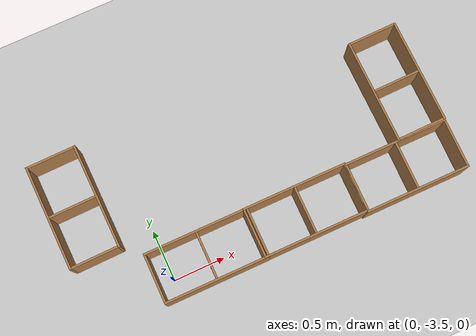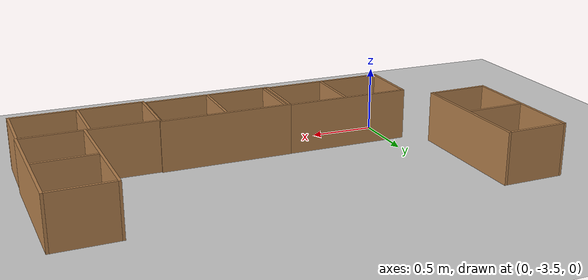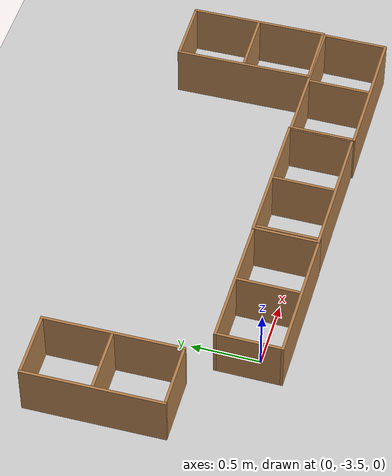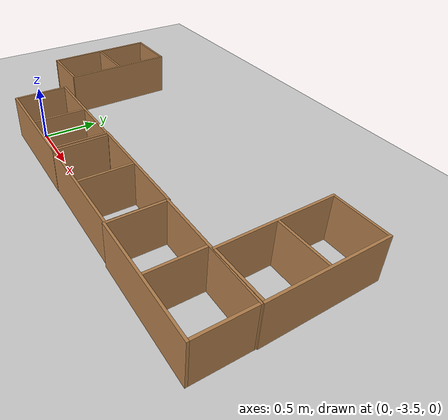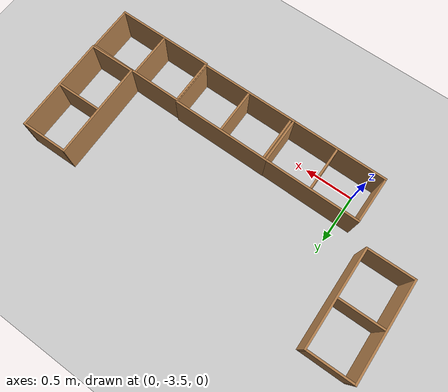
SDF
<sdf version="1.7">
 <world name="default">
  <model name="ground_plane">
   <static>1</static>
   <link name="link">
    <collision name="collision">
     <geometry><plane><normal>0 0 1</normal><size>100 100</size></plane></geometry>
     <surface>
      <contact><collide_bitmask>65535</collide_bitmask></contact>
      <friction><ode><mu>100</mu><mu2>50</mu2></ode></friction>
     </surface>
    </collision>
    <visual name="visual">
     <cast_shadows>0</cast_shadows>
     <geometry><plane><normal>0 0 1</normal><size>100 100</size></plane></geometry>
     <material>
      <script><uri>file://media/materials/scripts/gazebo.material</uri><name>Gazebo/Grey</name></script>
     </material>
    </visual>
   </link>
  </model>
  <model name="cabinet">
   <static>1</static>
   <link name="cabinet_bottom_plate">
    <inertial>
     <pose>0 0 -1 0 -0 0</pose>
     <inertia><ixx>2.05</ixx><ixy>0</ixy><ixz>0</ixz><iyy>2.05</iyy><iyz>0</iyz><izz>2.05</izz></inertia>
     <mass>25</mass>
    </inertial>
    <collision name="cabinet_bottom_plate_geom">
     <pose>0 0 0.01 0 -0 0</pose>
     <geometry><box><size>0.45 0.45 0.02</size></box></geometry>
    </collision>
    <visual name="cabinet_bottom_plate_geom_visual">
     <pose>0 0 0.01 0 -0 0</pose>
     <geometry><box><size>0.45 0.45 0.02</size></box></geometry>
     <material>
      <script><uri>file://media/materials/scripts/gazebo.material</uri><name>Gazebo/Wood</name></script>
     </material>
    </visual>
    <collision name="cabinet_bottom_plate_geom_cabinet_back_plate">
     <pose>0.235 0 0.51 0 -0 0</pose>
     <geometry><box><size>0.02 0.45 1.02</size></box></geometry>
    </collision>
    <visual name="cabinet_bottom_plate_geom_cabinet_back_plate_visual">
     <pose>0.235 0 0.51 0 -0 0</pose>
     <geometry><box><size>0.02 0.45 1.02</size></box></geometry>
     <material>
      <script><uri>file://media/materials/scripts/gazebo.material</uri><name>Gazebo/Wood</name></script>
     </material>
    </visual>
    <collision name="cabinet_bottom_plate_geom_cabinet_left_plate">
     <pose>0 0.235 0.51 0 -0 0</pose>
     <geometry><box><size>0.45 0.02 1.02</size></box></geometry>
    </collision>
    <visual name="cabinet_bottom_plate_geom_cabinet_left_plate_visual">
     <pose>0 0.235 0.51 0 -0 0</pose>
     <geometry><box><size>0.45 0.02 1.02</size></box></geometry>
     <material>
      <script><uri>file://media/materials/scripts/gazebo.material</uri><name>Gazebo/Wood</name></script>
     </material>
    </visual>
    <collision name="cabinet_bottom_plate_geom_cabinet_middle_plate">
     <pose>0 0 0.51 0 -0 0</pose>
     <geometry><box><size>0.45 0.45 0.02</size></box></geometry>
    </collision>
    <visual name="cabinet_bottom_plate_geom_cabinet_middle_plate_visual">
     <pose>0 0 0.51 0 -0 0</pose>
     <geometry><box><size>0.45 0.45 0.02</size></box></geometry>
     <material>
      <script><uri>file://media/materials/scripts/gazebo.material</uri><name>Gazebo/Wood</name></script>
     </material>
    </visual>
    <collision name="cabinet_bottom_plate_geom_cabinet_right_plate">
     <pose>0 -0.235 0.51 0 -0 0</pose>
     <geometry><box><size>0.45 0.02 1.02</size></box></geometry>
    </collision>
    <visual name="cabinet_bottom_plate_geom_cabinet_right_plate_visual">
     <pose>0 -0.235 0.51 0 -0 0</pose>
     <geometry><box><size>0.45 0.02 1.02</size></box></geometry>
     <material>
      <script><uri>file://media/materials/scripts/gazebo.material</uri><name>Gazebo/Wood</name></script>
     </material>
    </visual>
    <collision name="cabinet_bottom_plate_geom_cabinet_top_plate">
     <pose>0 0 1.01 0 -0 0</pose>
     <geometry><box><size>0.45 0.45 0.02</size></box></geometry>
    </collision>
    <visual name="cabinet_bottom_plate_geom_cabinet_top_plate_visual">
     <pose>0 0 1.01 0 -0 0</pose>
     <geometry><box><size>0.45 0.45 0.02</size></box></geometry>
     <material>
      <script><uri>file://media/materials/scripts/gazebo.material</uri><name>Gazebo/Wood</name></script>
     </material>
    </visual>
   </link>
   <pose>-0.147311 -3.44738 0.169718 3.14159 1.5658 3.14159</pose>
  </model>
  <model name="cabinet_clone_3">
   <static>1</static>
   <link name="cabinet_bottom_plate">
    <inertial>
     <pose>0 0 -1 0 -0 0</pose>
     <inertia><ixx>2.05</ixx><ixy>0</ixy><ixz>0</ixz><iyy>2.05</iyy><iyz>0</iyz><izz>2.05</izz></inertia>
     <mass>25</mass>
    </inertial>
    <collision name="cabinet_bottom_plate_geom">
     <pose>0 0 0.01 0 -0 0</pose>
     <geometry><box><size>0.45 0.45 0.02</size></box></geometry>
    </collision>
    <visual name="cabinet_bottom_plate_geom_visual">
     <pose>0 0 0.01 0 -0 0</pose>
     <geometry><box><size>0.45 0.45 0.02</size></box></geometry>
     <material>
      <script><uri>file://media/materials/scripts/gazebo.material</uri><name>Gazebo/Wood</name></script>
     </material>
    </visual>
    <collision name="cabinet_bottom_plate_geom_cabinet_back_plate">
     <pose>0.235 0 0.51 0 -0 0</pose>
     <geometry><box><size>0.02 0.45 1.02</size></box></geometry>
    </collision>
    <visual name="cabinet_bottom_plate_geom_cabinet_back_plate_visual">
     <pose>0.235 0 0.51 0 -0 0</pose>
     <geometry><box><size>0.02 0.45 1.02</size></box></geometry>
     <material>
      <script><uri>file://media/materials/scripts/gazebo.material</uri><name>Gazebo/Wood</name></script>
     </material>
    </visual>
    <collision name="cabinet_bottom_plate_geom_cabinet_left_plate">
     <pose>0 0.235 0.51 0 -0 0</pose>
     <geometry><box><size>0.45 0.02 1.02</size></box></geometry>
    </collision>
    <visual name="cabinet_bottom_plate_geom_cabinet_left_plate_visual">
     <pose>0 0.235 0.51 0 -0 0</pose>
     <geometry><box><size>0.45 0.02 1.02</size></box></geometry>
     <material>
      <script><uri>file://media/materials/scripts/gazebo.material</uri><name>Gazebo/Wood</name></script>
     </material>
    </visual>
    <collision name="cabinet_bottom_plate_geom_cabinet_middle_plate">
     <pose>0 0 0.51 0 -0 0</pose>
     <geometry><box><size>0.45 0.45 0.02</size></box></geometry>
    </collision>
    <visual name="cabinet_bottom_plate_geom_cabinet_middle_plate_visual">
     <pose>0 0 0.51 0 -0 0</pose>
     <geometry><box><size>0.45 0.45 0.02</size></box></geometry>
     <material>
      <script><uri>file://media/materials/scripts/gazebo.material</uri><name>Gazebo/Wood</name></script>
     </material>
    </visual>
    <collision name="cabinet_bottom_plate_geom_cabinet_right_plate">
     <pose>0 -0.235 0.51 0 -0 0</pose>
     <geometry><box><size>0.45 0.02 1.02</size></box></geometry>
    </collision>
    <visual name="cabinet_bottom_plate_geom_cabinet_right_plate_visual">
     <pose>0 -0.235 0.51 0 -0 0</pose>
     <geometry><box><size>0.45 0.02 1.02</size></box></geometry>
     <material>
      <script><uri>file://media/materials/scripts/gazebo.material</uri><name>Gazebo/Wood</name></script>
     </material>
    </visual>
    <collision name="cabinet_bottom_plate_geom_cabinet_top_plate">
     <pose>0 0 1.01 0 -0 0</pose>
     <geometry><box><size>0.45 0.45 0.02</size></box></geometry>
    </collision>
    <visual name="cabinet_bottom_plate_geom_cabinet_top_plate_visual">
     <pose>0 0 1.01 0 -0 0</pose>
     <geometry><box><size>0.45 0.45 0.02</size></box></geometry>
     <material>
      <script><uri>file://media/materials/scripts/gazebo.material</uri><name>Gazebo/Wood</name></script>
     </material>
    </visual>
   </link>
   <pose>0.824331 -3.4453 0.169718 3.14159 1.5658 3.14159</pose>
  </model>
  <model name="cabinet_clone_4">
   <static>1</static>
   <link name="cabinet_bottom_plate">
    <inertial>
     <pose>0 0 -1 0 -0 0</pose>
     <inertia><ixx>2.05</ixx><ixy>0</ixy><ixz>0</ixz><iyy>2.05</iyy><iyz>0</iyz><izz>2.05</izz></inertia>
     <mass>25</mass>
    </inertial>
    <collision name="cabinet_bottom_plate_geom">
     <pose>0 0 0.01 0 -0 0</pose>
     <geometry><box><size>0.45 0.45 0.02</size></box></geometry>
    </collision>
    <visual name="cabinet_bottom_plate_geom_visual">
     <pose>0 0 0.01 0 -0 0</pose>
     <geometry><box><size>0.45 0.45 0.02</size></box></geometry>
     <material>
      <script><uri>file://media/materials/scripts/gazebo.material</uri><name>Gazebo/Wood</name></script>
     </material>
    </visual>
    <collision name="cabinet_bottom_plate_geom_cabinet_back_plate">
     <pose>0.235 0 0.51 0 -0 0</pose>
     <geometry><box><size>0.02 0.45 1.02</size></box></geometry>
    </collision>
    <visual name="cabinet_bottom_plate_geom_cabinet_back_plate_visual">
     <pose>0.235 0 0.51 0 -0 0</pose>
     <geometry><box><size>0.02 0.45 1.02</size></box></geometry>
     <material>
      <script><uri>file://media/materials/scripts/gazebo.material</uri><name>Gazebo/Wood</name></script>
     </material>
    </visual>
    <collision name="cabinet_bottom_plate_geom_cabinet_left_plate">
     <pose>0 0.235 0.51 0 -0 0</pose>
     <geometry><box><size>0.45 0.02 1.02</size></box></geometry>
    </collision>
    <visual name="cabinet_bottom_plate_geom_cabinet_left_plate_visual">
     <pose>0 0.235 0.51 0 -0 0</pose>
     <geometry><box><size>0.45 0.02 1.02</size></box></geometry>
     <material>
      <script><uri>file://media/materials/scripts/gazebo.material</uri><name>Gazebo/Wood</name></script>
     </material>
    </visual>
    <collision name="cabinet_bottom_plate_geom_cabinet_middle_plate">
     <pose>0 0 0.51 0 -0 0</pose>
     <geometry><box><size>0.45 0.45 0.02</size></box></geometry>
    </collision>
    <visual name="cabinet_bottom_plate_geom_cabinet_middle_plate_visual">
     <pose>0 0 0.51 0 -0 0</pose>
     <geometry><box><size>0.45 0.45 0.02</size></box></geometry>
     <material>
      <script><uri>file://media/materials/scripts/gazebo.material</uri><name>Gazebo/Wood</name></script>
     </material>
    </visual>
    <collision name="cabinet_bottom_plate_geom_cabinet_right_plate">
     <pose>0 -0.235 0.51 0 -0 0</pose>
     <geometry><box><size>0.45 0.02 1.02</size></box></geometry>
    </collision>
    <visual name="cabinet_bottom_plate_geom_cabinet_right_plate_visual">
     <pose>0 -0.235 0.51 0 -0 0</pose>
     <geometry><box><size>0.45 0.02 1.02</size></box></geometry>
     <material>
      <script><uri>file://media/materials/scripts/gazebo.material</uri><name>Gazebo/Wood</name></script>
     </material>
    </visual>
    <collision name="cabinet_bottom_plate_geom_cabinet_top_plate">
     <pose>0 0 1.01 0 -0 0</pose>
     <geometry><box><size>0.45 0.45 0.02</size></box></geometry>
    </collision>
    <visual name="cabinet_bottom_plate_geom_cabinet_top_plate_visual">
     <pose>0 0 1.01 0 -0 0</pose>
     <geometry><box><size>0.45 0.45 0.02</size></box></geometry>
     <material>
      <script><uri>file://media/materials/scripts/gazebo.material</uri><name>Gazebo/Wood</name></script>
     </material>
    </visual>
   </link>
   <pose>1.83361 -3.45652 0.169718 3.14159 1.5658 3.14159</pose>
  </model>
  <model name="cabinet_clone_5_clone_5">
   <static>1</static>
   <link name="cabinet_bottom_plate">
    <inertial>
     <pose>0 0 -1 0 -0 0</pose>
     <inertia><ixx>2.05</ixx><ixy>0</ixy><ixz>0</ixz><iyy>2.05</iyy><iyz>0</iyz><izz>2.05</izz></inertia>
     <mass>25</mass>
    </inertial>
    <collision name="cabinet_bottom_plate_geom">
     <pose>0 0 0.01 0 -0 0</pose>
     <geometry><box><size>0.45 0.45 0.02</size></box></geometry>
    </collision>
    <visual name="cabinet_bottom_plate_geom_visual">
     <pose>0 0 0.01 0 -0 0</pose>
     <geometry><box><size>0.45 0.45 0.02</size></box></geometry>
     <material>
      <script><uri>file://media/materials/scripts/gazebo.material</uri><name>Gazebo/Wood</name></script>
     </material>
    </visual>
    <collision name="cabinet_bottom_plate_geom_cabinet_back_plate">
     <pose>0.235 0 0.51 0 -0 0</pose>
     <geometry><box><size>0.02 0.45 1.02</size></box></geometry>
    </collision>
    <visual name="cabinet_bottom_plate_geom_cabinet_back_plate_visual">
     <pose>0.235 0 0.51 0 -0 0</pose>
     <geometry><box><size>0.02 0.45 1.02</size></box></geometry>
     <material>
      <script><uri>file://media/materials/scripts/gazebo.material</uri><name>Gazebo/Wood</name></script>
     </material>
    </visual>
    <collision name="cabinet_bottom_plate_geom_cabinet_left_plate">
     <pose>0 0.235 0.51 0 -0 0</pose>
     <geometry><box><size>0.45 0.02 1.02</size></box></geometry>
    </collision>
    <visual name="cabinet_bottom_plate_geom_cabinet_left_plate_visual">
     <pose>0 0.235 0.51 0 -0 0</pose>
     <geometry><box><size>0.45 0.02 1.02</size></box></geometry>
     <material>
      <script><uri>file://media/materials/scripts/gazebo.material</uri><name>Gazebo/Wood</name></script>
     </material>
    </visual>
    <collision name="cabinet_bottom_plate_geom_cabinet_middle_plate">
     <pose>0 0 0.51 0 -0 0</pose>
     <geometry><box><size>0.45 0.45 0.02</size></box></geometry>
    </collision>
    <visual name="cabinet_bottom_plate_geom_cabinet_middle_plate_visual">
     <pose>0 0 0.51 0 -0 0</pose>
     <geometry><box><size>0.45 0.45 0.02</size></box></geometry>
     <material>
      <script><uri>file://media/materials/scripts/gazebo.material</uri><name>Gazebo/Wood</name></script>
     </material>
    </visual>
    <collision name="cabinet_bottom_plate_geom_cabinet_right_plate">
     <pose>0 -0.235 0.51 0 -0 0</pose>
     <geometry><box><size>0.45 0.02 1.02</size></box></geometry>
    </collision>
    <visual name="cabinet_bottom_plate_geom_cabinet_right_plate_visual">
     <pose>0 -0.235 0.51 0 -0 0</pose>
     <geometry><box><size>0.45 0.02 1.02</size></box></geometry>
     <material>
      <script><uri>file://media/materials/scripts/gazebo.material</uri><name>Gazebo/Wood</name></script>
     </material>
    </visual>
    <collision name="cabinet_bottom_plate_geom_cabinet_top_plate">
     <pose>0 0 1.01 0 -0 0</pose>
     <geometry><box><size>0.45 0.45 0.02</size></box></geometry>
    </collision>
    <visual name="cabinet_bottom_plate_geom_cabinet_top_plate_visual">
     <pose>0 0 1.01 0 -0 0</pose>
     <geometry><box><size>0.45 0.45 0.02</size></box></geometry>
     <material>
      <script><uri>file://media/materials/scripts/gazebo.material</uri><name>Gazebo/Wood</name></script>
     </material>
    </visual>
   </link>
   <pose>2.61559 -3.21985 0.169718 1.55548 1.5658 -3.14159</pose>
  </model>
  <model name="cabinet_clone_5_clone_13_clone">
   <static>1</static>
   <link name="cabinet_bottom_plate">
    <inertial>
     <pose>0 0 -1 0 -0 0</pose>
     <inertia><ixx>2.05</ixx><ixy>0</ixy><ixz>0</ixz><iyy>2.05</iyy><iyz>0</iyz><izz>2.05</izz></inertia>
     <mass>25</mass>
    </inertial>
    <collision name="cabinet_bottom_plate_geom">
     <pose>0 0 0.01 0 -0 0</pose>
     <geometry><box><size>0.45 0.45 0.02</size></box></geometry>
    </collision>
    <visual name="cabinet_bottom_plate_geom_visual">
     <pose>0 0 0.01 0 -0 0</pose>
     <geometry><box><size>0.45 0.45 0.02</size></box></geometry>
     <material>
      <script><uri>file://media/materials/scripts/gazebo.material</uri><name>Gazebo/Wood</name></script>
     </material>
    </visual>
    <collision name="cabinet_bottom_plate_geom_cabinet_back_plate">
     <pose>0.235 0 0.51 0 -0 0</pose>
     <geometry><box><size>0.02 0.45 1.02</size></box></geometry>
    </collision>
    <visual name="cabinet_bottom_plate_geom_cabinet_back_plate_visual">
     <pose>0.235 0 0.51 0 -0 0</pose>
     <geometry><box><size>0.02 0.45 1.02</size></box></geometry>
     <material>
      <script><uri>file://media/materials/scripts/gazebo.material</uri><name>Gazebo/Wood</name></script>
     </material>
    </visual>
    <collision name="cabinet_bottom_plate_geom_cabinet_left_plate">
     <pose>0 0.235 0.51 0 -0 0</pose>
     <geometry><box><size>0.45 0.02 1.02</size></box></geometry>
    </collision>
    <visual name="cabinet_bottom_plate_geom_cabinet_left_plate_visual">
     <pose>0 0.235 0.51 0 -0 0</pose>
     <geometry><box><size>0.45 0.02 1.02</size></box></geometry>
     <material>
      <script><uri>file://media/materials/scripts/gazebo.material</uri><name>Gazebo/Wood</name></script>
     </material>
    </visual>
    <collision name="cabinet_bottom_plate_geom_cabinet_middle_plate">
     <pose>0 0 0.51 0 -0 0</pose>
     <geometry><box><size>0.45 0.45 0.02</size></box></geometry>
    </collision>
    <visual name="cabinet_bottom_plate_geom_cabinet_middle_plate_visual">
     <pose>0 0 0.51 0 -0 0</pose>
     <geometry><box><size>0.45 0.45 0.02</size></box></geometry>
     <material>
      <script><uri>file://media/materials/scripts/gazebo.material</uri><name>Gazebo/Wood</name></script>
     </material>
    </visual>
    <collision name="cabinet_bottom_plate_geom_cabinet_right_plate">
     <pose>0 -0.235 0.51 0 -0 0</pose>
     <geometry><box><size>0.45 0.02 1.02</size></box></geometry>
    </collision>
    <visual name="cabinet_bottom_plate_geom_cabinet_right_plate_visual">
     <pose>0 -0.235 0.51 0 -0 0</pose>
     <geometry><box><size>0.45 0.02 1.02</size></box></geometry>
     <material>
      <script><uri>file://media/materials/scripts/gazebo.material</uri><name>Gazebo/Wood</name></script>
     </material>
    </visual>
    <collision name="cabinet_bottom_plate_geom_cabinet_top_plate">
     <pose>0 0 1.01 0 -0 0</pose>
     <geometry><box><size>0.45 0.45 0.02</size></box></geometry>
    </collision>
    <visual name="cabinet_bottom_plate_geom_cabinet_top_plate_visual">
     <pose>0 0 1.01 0 -0 0</pose>
     <geometry><box><size>0.45 0.45 0.02</size></box></geometry>
     <material>
      <script><uri>file://media/materials/scripts/gazebo.material</uri><name>Gazebo/Wood</name></script>
     </material>
    </visual>
   </link>
   <pose>-0.548611 -3.06369 0.169718 1.55548 1.5658 -3.14159</pose>
  </model>
 </world>
</sdf>
